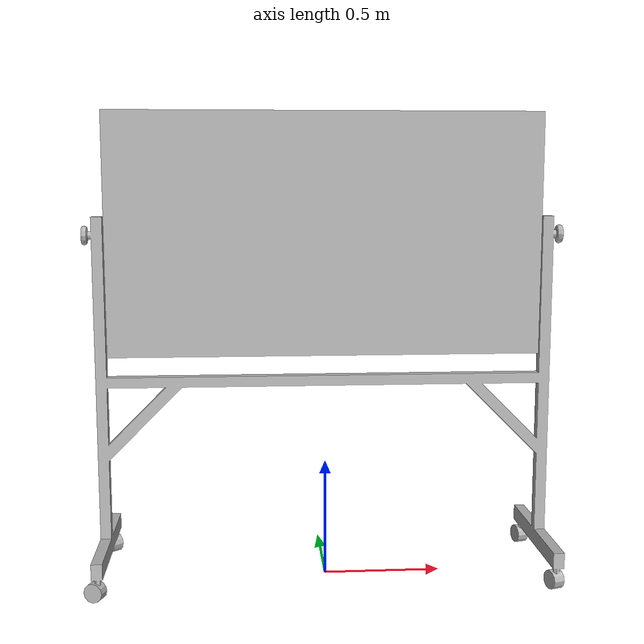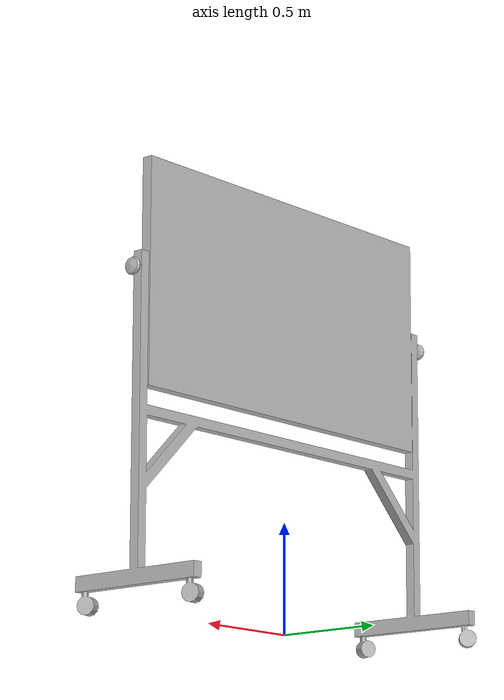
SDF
<sdf version="1.5">
  <model name="whiteboard">
    <static>true</static>
    <link name="link">
      <collision name="collision">
        <pose>-0.010992 -0.000776 0.998212 0 0 0</pose>
        <geometry>
          <box>
            <size>1.973720 0.696820 2.025070</size>
          </box>
        </geometry>
      </collision>
      <visual name="visual">
        <geometry>
          <mesh>
            <uri>model://whiteboard/meshes/whiteboard.obj</uri>
            <scale>0.01 0.01 0.01</scale>
          </mesh>
        </geometry>
      </visual>
    </link>
  </model>
</sdf>
